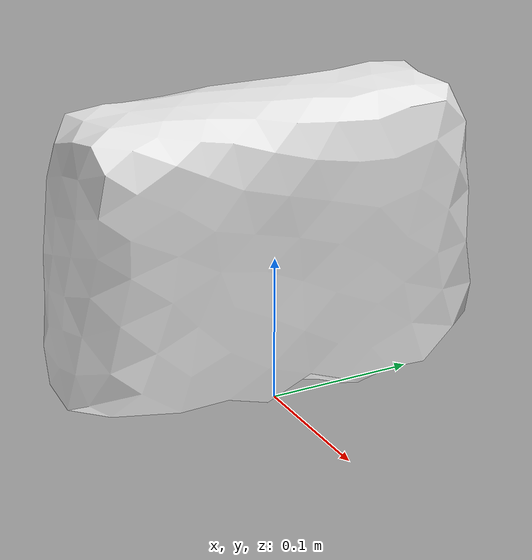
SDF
<?xml version="1.0" ?><sdf version="1.5"><model name="power-box">
<link name="link">
<pose>0 0 0 0 0 0</pose>
<inertial>
<pose>0.006286 -0.014609 0.122501 0 0 0</pose>
<mass>0.245</mass>
<inertia>
<ixx>0.00240396</ixx>
<ixy>0</ixy><iyy>0.00105296</iyy>
<ixz>0</ixz><iyz>0</iyz><izz>0.00193716</izz>
</inertia>
</inertial>
<visual name="visual">
<pose>0 0 0 0 0 0</pose>
<geometry><mesh><uri>model://power-box/meshes/power-box.dae</uri></mesh></geometry>
<material><script><uri>file://media/materials/scripts/gazebo.material</uri><name>Gazebo/WhiteGlow</name></script></material></visual>
<collision name="collision"><pose>0 0 0 0 0 0</pose><geometry><mesh><uri>model://power-box/meshes/power-box.dae</uri></mesh></geometry>
<surface><friction><ode><mu>1.000000</mu><mu2>1.000000</mu2></ode></friction></surface>
</collision></link></model></sdf>
